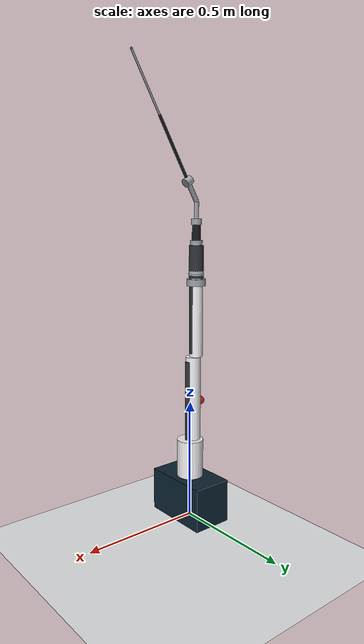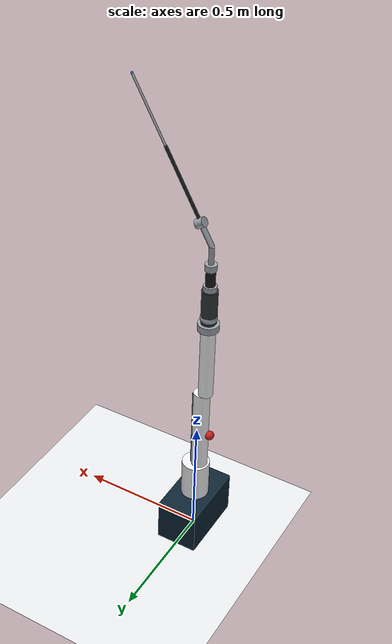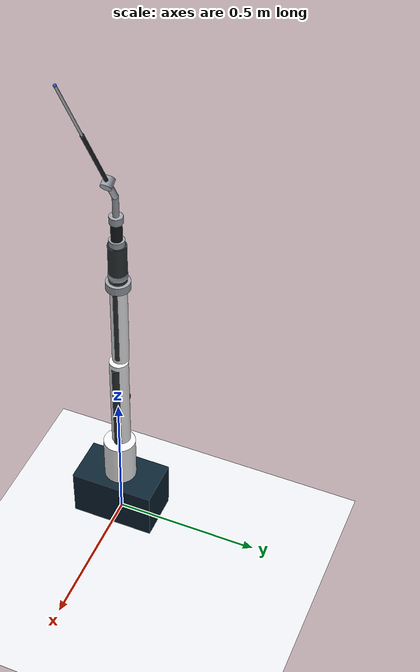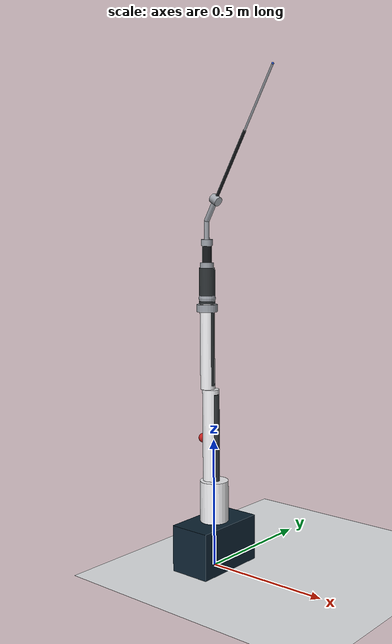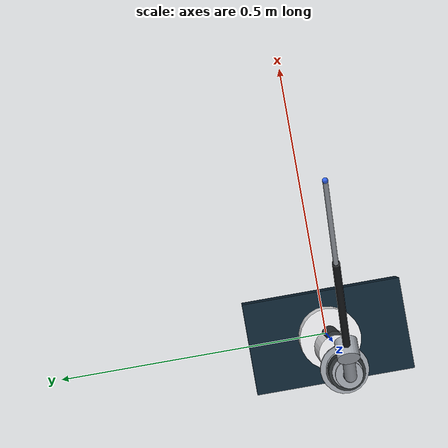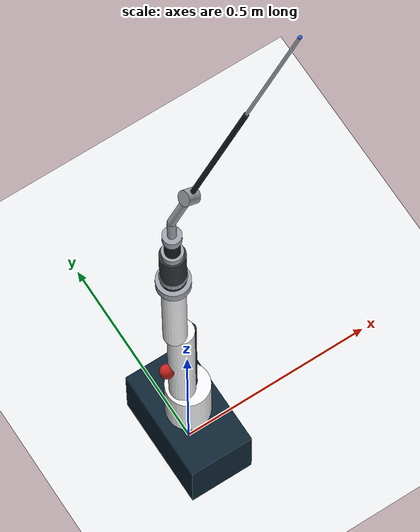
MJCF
<mujoco model="soloassist">
  <compiler angle="radian" autolimits="true"/>
  <option timestep="0.002" integrator="implicitfast" gravity="0 0 -9.81"/>

  <visual>
    <headlight ambient="0.35 0.35 0.35" diffuse="0.65 0.65 0.65" specular="0.2 0.2 0.2"/>
    <rgba haze="0.15 0.2 0.25 1"/>
  </visual>

  <asset>
    <texture name="grid" type="2d" builtin="checker" width="256" height="256"
             rgb1="0.88 0.89 0.90" rgb2="0.95 0.96 0.97"/>
    <material name="floor_mat" texture="grid" texrepeat="8 8" reflectance="0.08"/>
    <material name="shell_white" rgba="0.95 0.95 0.96 1"/>
    <material name="carbon_black" rgba="0.18 0.20 0.21 1"/>
    <material name="base_blue" rgba="0.05 0.14 0.20 1"/>
    <material name="accent_red" rgba="0.78 0.13 0.12 1"/>
    <material name="metal_gray" rgba="0.62 0.64 0.67 1"/>
    <material name="scope_black" rgba="0.09 0.10 0.11 1"/>
  </asset>

  <default>
    <joint damping="0" frictionloss="0"/>
    <default class="visual">
      <geom type="box" group="2" contype="0" conaffinity="0"/>
    </default>
    <default class="collision">
      <geom type="box" group="3" rgba="0 0 0 0"/>
    </default>
  </default>

  <contact>
    <exclude body1="base_mount" body2="shoulder_link"/>
    <exclude body1="shoulder_link" body2="upper_cantilever_link"/>
    <exclude body1="upper_cantilever_link" body2="elbow_link"/>
    <exclude body1="elbow_link" body2="distal_indexed_link"/>
    <exclude body1="distal_indexed_link" body2="gimbal_outer_link"/>
    <exclude body1="gimbal_outer_link" body2="scope_shaft_link"/>
    <exclude body1="scope_shaft_link" body2="scope_tool_link"/>
    <exclude body1="scope_tool_link" body2="instrument_link"/>
  </contact>

  <worldbody>
    <geom name="floor" type="plane" size="2 2 0.1" material="floor_mat"/>
    <light name="ceiling_light" pos="0 0 2.5" dir="0 0 -1"/>
    <camera name="overview" pos="1.2 -1.3 0.9" xyaxes="0.73 0.68 0 -0.28 0.30 0.91"/>

    <body name="pivot_marker" mocap="true" pos="0 0 0.5">
      <geom name="pivot_geom" type="sphere" size="0.01" rgba="0.90 0.20 0.20 0.75" contype="0" conaffinity="0"/>
      <site name="pivot_site" type="sphere" size="0.005" rgba="0.90 0.20 0.20 1"/>
    </body>

    <body name="base_mount" pos="0 0 0">
      <inertial pos="0 0 0.11" mass="5.50" diaginertia="0.060995 0.034966 0.051595"/>

      <geom name="base_mount_visual_1" class="visual" pos="0 0 0.09" size="0.0835 0.1455 0.09"
            material="base_blue"/>
      <geom name="base_mount_visual_2" class="visual" type="cylinder" pos="0 0 0.23" size="0.055 0.11"
            material="shell_white"/>
      <geom name="base_mount_visual_3" class="visual" pos="0.055 -0.08 0.09" size="0.025 0.035 0.045"
            material="metal_gray"/>
      <geom name="base_mount_collision_1" class="collision" pos="0 0 0.09" size="0.0835 0.1455 0.09"/>
      <geom name="base_mount_collision_2" class="collision" type="cylinder" pos="0 0 0.23" size="0.055 0.11"/>

      <body name="shoulder_link" pos="0 0 0.22">
        <joint name="axis_1" type="hinge" axis="0 0 1" range="-3.14159265359 3.14159265359"
               damping="2.0" frictionloss="0.15"/>
        <inertial pos="-0.015 0 0.238" mass="2.60" diaginertia="0.050408 0.050408 0.001331"/>

        <geom name="shoulder_link_visual_1" class="visual" type="cylinder" pos="-0.015 0 0.238"
              size="0.032 0.2385" material="shell_white"/>
        <geom name="shoulder_link_visual_2" class="visual" type="cylinder" pos="0.010 0 0.248"
              size="0.014 0.21" material="carbon_black"/>
        <geom name="shoulder_link_visual_3" class="visual" type="sphere" pos="-0.055 0 0.28"
              size="0.018" material="accent_red"/>
        <geom name="shoulder_link_collision_1" class="collision" type="cylinder" pos="-0.015 0 0.238"
              size="0.032 0.2385"/>

        <body name="upper_cantilever_link" pos="-0.03 0 0.476">
          <joint name="axis_2" type="hinge" axis="0 1 0" range="-3.14159265359 3.14159265359"
                 damping="3.5" frictionloss="0.20"/>
          <inertial pos="0 0 0.1645" mass="1.70" diaginertia="0.015769 0.015769 0.000666"/>

          <geom name="upper_cantilever_link_visual_1" class="visual" type="cylinder" pos="0 0 0.1645"
                size="0.028 0.1645" material="shell_white"/>
          <geom name="upper_cantilever_link_visual_2" class="visual" type="cylinder" pos="0.018 0 0.1645"
                size="0.012 0.15" material="carbon_black"/>
          <geom name="upper_cantilever_link_visual_3" class="visual" type="cylinder" pos="0 0 0.312"
                size="0.040 0.014" material="metal_gray"/>
          <geom name="upper_cantilever_link_collision_1" class="collision" type="cylinder" pos="0 0 0.1645"
                size="0.028 0.1645"/>

          <body name="elbow_link" pos="0 0 0.329">
            <joint name="axis_3" type="hinge" axis="0 1 0" range="-3.14159265359 3.14159265359"
                   damping="2.8" frictionloss="0.15"/>
            <inertial pos="0 0 0.0675" mass="0.55" diaginertia="0.000912 0.000912 0.000248"/>

            <geom name="elbow_link_visual_1" class="visual" type="cylinder" pos="0 0 0.0675"
                  size="0.030 0.0675" material="carbon_black"/>
            <geom name="elbow_link_visual_2" class="visual" type="sphere" pos="0 0 0.020"
                  size="0.032" material="metal_gray"/>
            <geom name="elbow_link_collision_1" class="collision" type="cylinder" pos="0 0 0.0675"
                  size="0.030 0.0675"/>

            <body name="distal_indexed_link" pos="0 0 0.135">
              <joint name="axis_4_manual_index" type="hinge" axis="0 0 1"
                     range="-3.14159265359 3.14159265359" damping="12.0" frictionloss="8.0"/>
              <inertial pos="0 0 0.0475" mass="0.30" diaginertia="0.000239 0.000239 0.000049"/>
              <site name="gimbal_base_site" pos="0 0 0.095" size="0.004" rgba="0.20 0.75 0.25 1"/>

              <geom name="distal_indexed_link_visual_1" class="visual" type="cylinder" pos="0 0 0.0475"
                    size="0.018 0.0475" material="scope_black"/>
              <geom name="distal_indexed_link_visual_2" class="visual" type="cylinder" pos="0 0 0.010"
                    size="0.025 0.010" material="metal_gray"/>
              <geom name="distal_indexed_link_collision_1" class="collision" type="cylinder" pos="0 0 0.0475"
                    size="0.018 0.0475"/>

              <body name="gimbal_outer_link" pos="0 0 0.095">
                <joint name="axis_5_gimbal_yaw" type="hinge" axis="0 0 1"
                       range="-3.14159265359 3.14159265359" damping="0.08" frictionloss="0.01"/>
                <inertial pos="0 0 0" mass="0.18" diaginertia="0.000030 0.000030 0.000044"/>

                <geom name="gimbal_outer_link_visual_1" class="visual" type="cylinder" pos="0 0 0"
                      size="0.022 0.012" material="metal_gray"/>
                <geom name="gimbal_outer_link_visual_2" class="visual" type="cylinder" pos="0 0 -0.018"
                      size="0.010 0.008" material="metal_gray"/>
                <geom name="gimbal_outer_link_collision_1" class="collision" type="cylinder" pos="0 0 0"
                      size="0.022 0.012"/>
                <geom name="gimbal_outer_link_collision_2" class="collision" type="cylinder" pos="0 0 -0.018"
                      size="0.010 0.008"/>

                <body name="scope_shaft_link" pos="0 0 0">
                  <inertial pos="0 0 0.08" mass="0.20" diaginertia="0.000430 0.000430 0.000010"/>

                  <geom name="scope_shaft_link_visual_1" class="visual" type="cylinder" pos="0 0 0.04"
                        size="0.010 0.04" material="metal_gray"/>
                  <geom name="scope_shaft_link_visual_2" class="visual" type="cylinder" pos="0.0225 0 0.1190"
                        euler="0 0.5236 0" size="0.010 0.045" material="metal_gray"/>
                  <geom name="scope_shaft_link_collision_1" class="collision" type="cylinder" pos="0 0 0.04"
                        size="0.010 0.04"/>

                  <body name="scope_tool_link" pos="0.045 0 0.1579" euler="0 0.5236 0">
                    <inertial pos="0 0 0.14" mass="0.47" diaginertia="0.003100 0.003100 0.000020"/>

                    <geom name="scope_tool_link_visual_1" class="visual" type="cylinder" pos="0 0 0"
                          euler="0 1.57079632679 0" size="0.018 0.016" material="metal_gray"/>
                    <geom name="scope_tool_link_visual_2" class="visual" type="cylinder" pos="0 0 0"
                          size="0.012 0.010" material="metal_gray"/>
                    <geom name="scope_tool_link_visual_3" class="visual" type="cylinder" pos="0 0 0.14"
                          size="0.006 0.14" material="scope_black"/>
                    <geom name="scope_tool_link_collision_1" class="collision" type="cylinder" pos="0 0 0"
                          euler="0 1.57079632679 0" size="0.018 0.016"/>
                    <geom name="scope_tool_link_collision_2" class="collision" type="cylinder" pos="0 0 0.14"
                          size="0.006 0.14"/>

                    <body name="instrument_link" pos="0 0 0.280">
                      <joint name="axis_6_gimbal_pitch" type="hinge" axis="1 0 0" range="-1.90 1.90"
                             damping="0.08" frictionloss="0.01"/>
                      <inertial pos="0 0 0.05" mass="0.10" diaginertia="0.0001 0.0001 0.00001"/>
                      <site name="tool_base_site" pos="0 0 0" size="0.004" rgba="0.25 0.85 0.25 1"/>
                      <site name="shaft_axis_site" pos="0 0 0.12" size="0.0035" rgba="0.20 0.60 0.95 1"/>
                      <site name="shaft_tip_site" pos="0 0 0.25" size="0.0045" rgba="0.20 0.40 0.95 1"/>

                      <geom name="instrument_link_visual_1" class="visual" type="cylinder" pos="0 0 0.05"
                            size="0.004 0.20" material="metal_gray"/>
                    </body>
                  </body>
                </body>
              </body>
            </body>
          </body>
        </body>
      </body>
    </body>
  </worldbody>

  <actuator>
    <position name="act_axis_1" joint="axis_1" kp="900" dampratio="1.1"
              ctrlrange="-3.14159265359 3.14159265359"/>
    <position name="act_axis_2" joint="axis_2" kp="1200" dampratio="1.1"
              ctrlrange="-3.14159265359 3.14159265359"/>
    <position name="act_axis_3" joint="axis_3" kp="800" dampratio="1.1"
              ctrlrange="-3.14159265359 3.14159265359"/>
    <position name="act_axis_4_manual_index" joint="axis_4_manual_index" kp="300" dampratio="1.1"
              ctrlrange="-3.14159265359 3.14159265359"/>
    <position name="act_axis_5_gimbal_yaw" joint="axis_5_gimbal_yaw" kp="500" dampratio="1.1"
              ctrlrange="-3.14159265359 3.14159265359"/>
    <position name="act_axis_6_gimbal_pitch" joint="axis_6_gimbal_pitch" kp="500" dampratio="1.1"
              ctrlrange="-1.90 1.90"/>
  </actuator>

  <keyframe>
    <key name="home" qpos="0 0 0 0 0 0" ctrl="0 0 0 0 0 0"/>
  </keyframe>
</mujoco>
